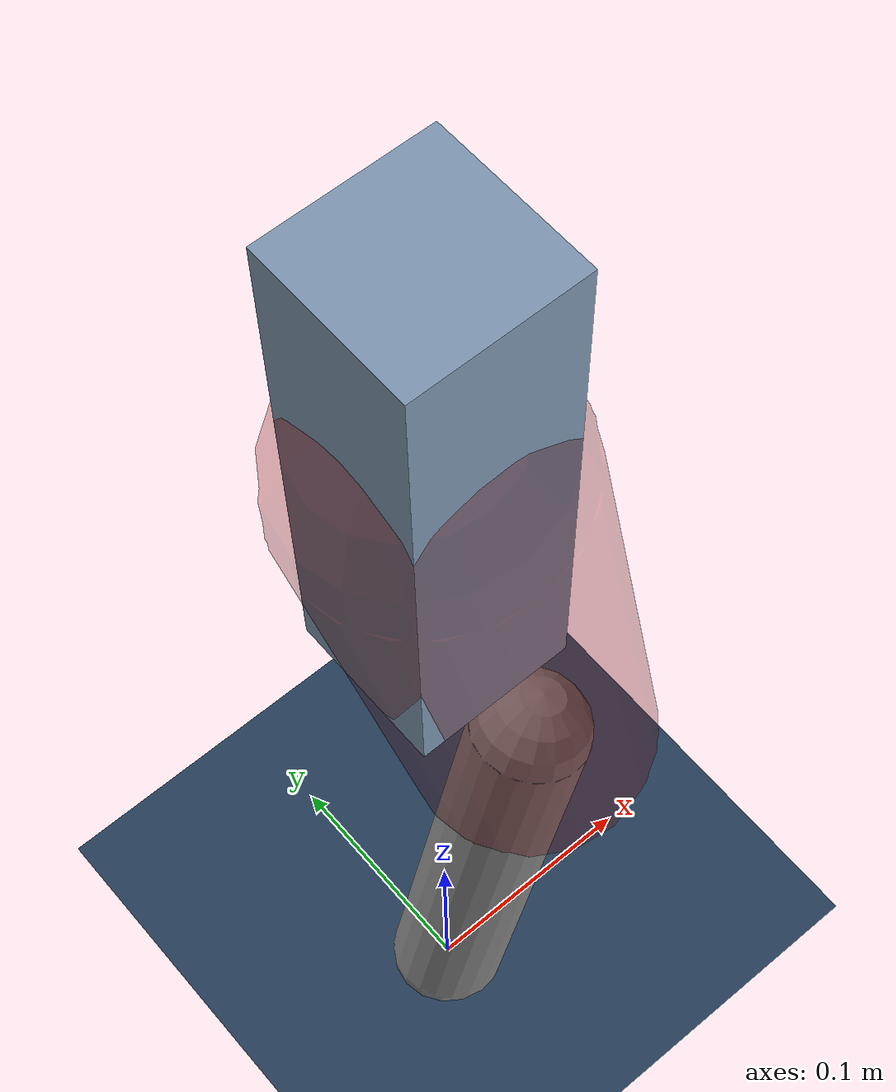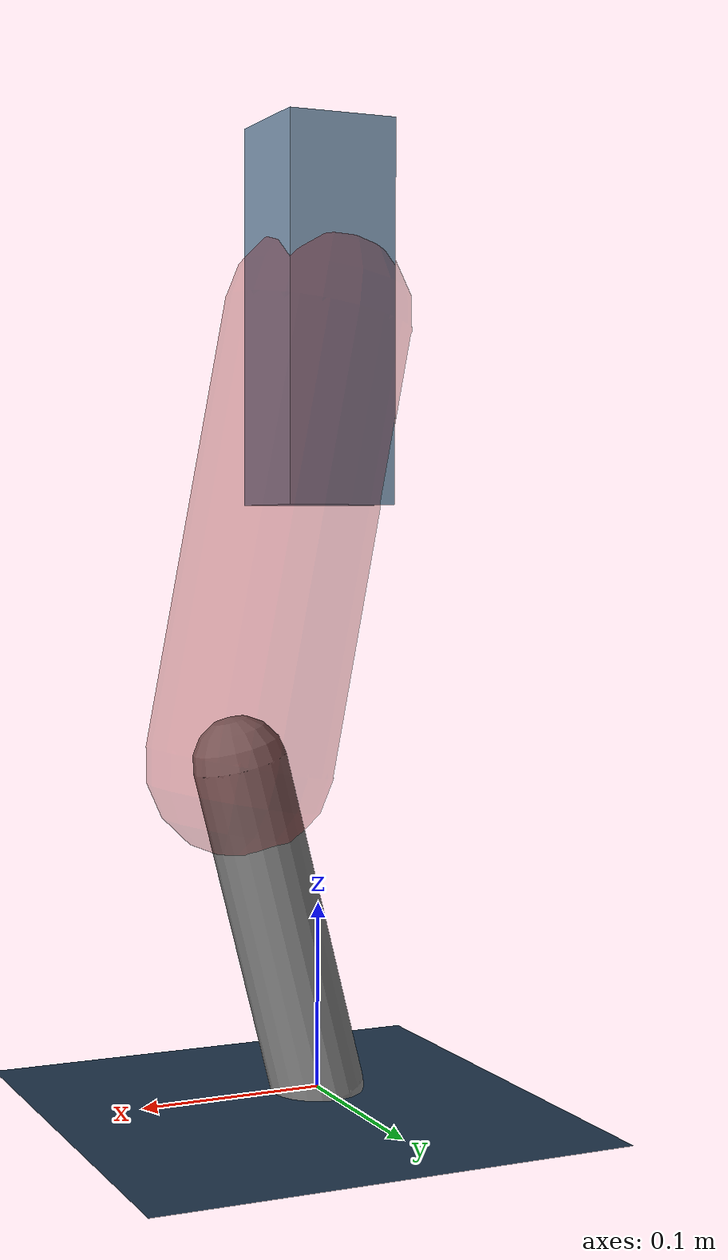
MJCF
<mujoco model="Hopper2D">
	<compiler inertiafromgeom="true" angle="radian" />
	<option timestep="0.001" integrator="implicit" cone="elliptic" solver="Newton" tolerance="1e-10" />

	<default>
		<geom contype="1" conaffinity="1" condim="3" friction="2 0.005 0.0001" solref="0.005 1" />
		<joint limited="true" damping="0.1" />
	</default>

	<asset>
		<texture name="skybox" type="skybox" builtin="gradient" rgb1=".4 .6 .8" rgb2="0 0 0" width="800" height="800" />
		<texture name="grid" type="2d" builtin="checker" rgb1=".1 .2 .3" rgb2=".2 .3 .4" width="300" height="300" mark="edge" markrgb=".2 .3 .4" />
		<material name="ground" texture="grid" texrepeat="1 1" texuniform="true" reflectance="0.1" />
		<material name="leg" rgba="0.5 0.6 0.7 1" />
	</asset>

	<worldbody>

		<geom name="floor" type="plane" size="5 5 0.25" material="ground" />

		<light directional="false" diffuse="0.8 0.8 0.8" specular="0.3 0.3 0.3" pos="0 0 2" dir="0 0 -1" />
		<light mode="targetbodycom" target="base" directional="false" diffuse="0.8 0.8 0.8" specular="0.3 0.3 0.3" pos="0 0 2" dir="0 0 -1" />

		<camera name="fixed" pos="0 -2 1" xyaxes="1 0 0 0 0 1" />
		<camera name="tracking" mode="trackcom" pos="0 -3 1" />

		<body name="root" pos="0 0 0.41292781729847583">
			<joint name="slide_x" type="slide" axis="1 0 0" range="-100 100" />
			<joint name="slide_z" type="slide" axis="0 0 1" range="0 10" />

			<body name="base" pos="0 0 0">
				<geom name="torso" type="box" size="0.03 0.03 0.1" mass="1.8370000000000002" material="leg" />

				<body name="link1" pos="0 0 0" euler="0 1.380443330149451 0">
					<joint type="hinge" axis="0 -1 0" pos="0 0 0" name="hinge1" limited="true" range="-3.14 3.14" stiffness="0" damping="0.1" />
					<geom name="thigh" type="capsule" fromto="0 0 0 0.23938349914785684 0 0" size="0.05" rgba="0.5 0 0 0.3" mass="0.8289970977844278" />

					<body name="link2" pos="0.23938349914785684 0 0" euler="0 0.43969565819196404 0">
						<joint type="hinge" axis="0 -1 0" pos="0 0 0" name="hinge2" limited="true" range="-3.14 3.14" stiffness="0" damping="0.1" />
						<geom name="shank" type="capsule" fromto="0 0 0 0.18354431815061897 0 0" size="0.025" mass="0.38693545452049516" />

					</body>
				</body>
			</body>
		</body>
	</worldbody>

	<actuator>
		<motor name="torque1" joint="hinge1" ctrlrange="-60.53769654243071 60.53769654243071" ctrllimited="true" gear="1" />
		<motor name="torque2" joint="hinge2" ctrlrange="-59.75165198102485 59.75165198102485" ctrllimited="true" gear="1" />
	</actuator>
</mujoco>
